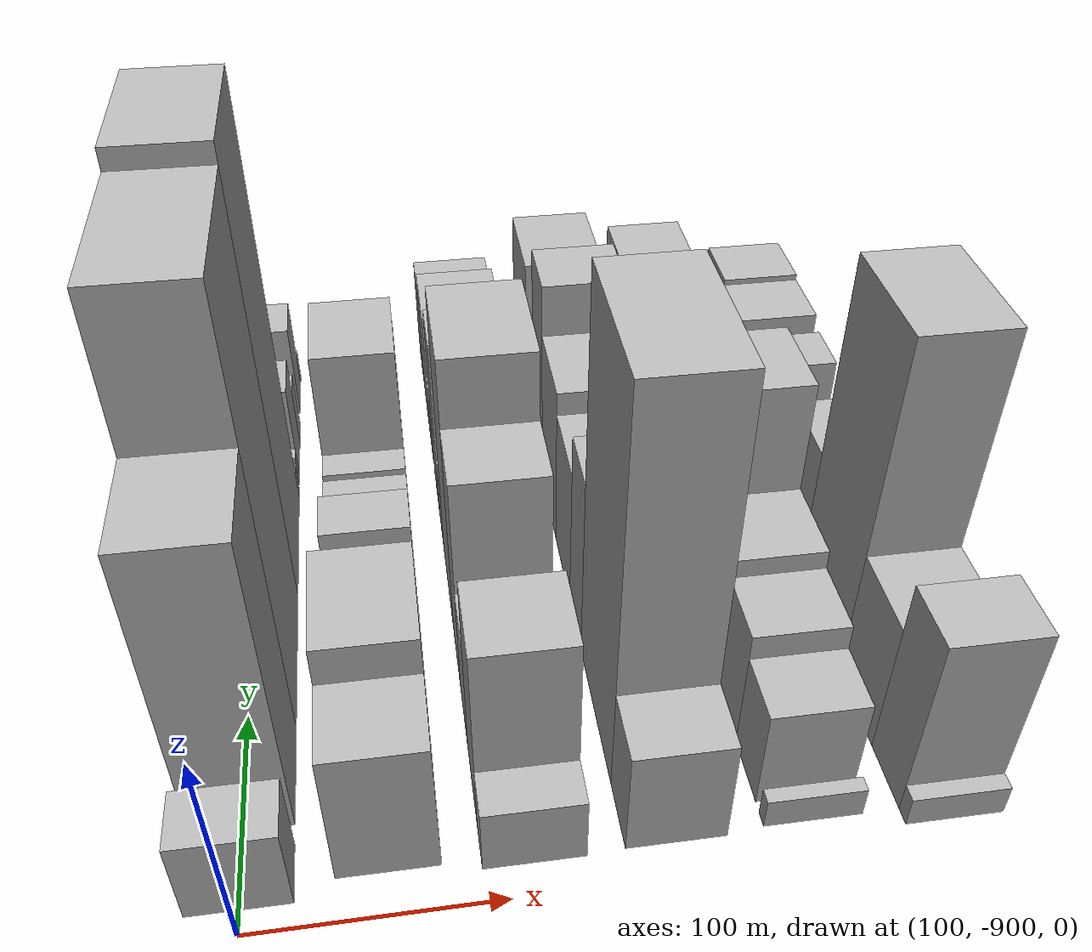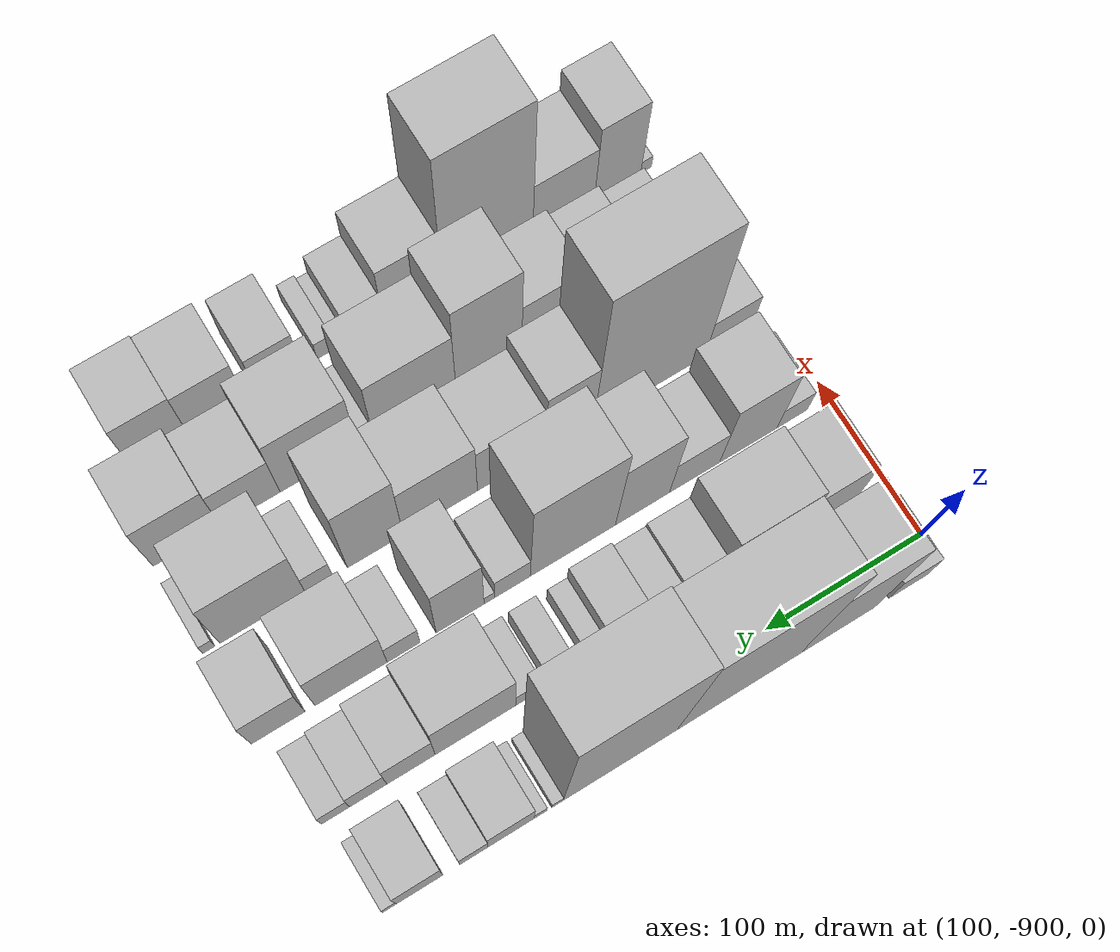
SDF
<sdf version="1.6">
 <world name="default">
  <model name="building_1">
   <static>1</static>
   <pose>100.0000 -877.6321 0 0.000000 0.000000 0.000000</pose>
   <link name="link">
    <pose>0 0 21.00 0 0 0</pose>
    <collision name="collision"><geometry><box><size>40.0000 24.7358 42.0000</size></box></geometry></collision>
    <visual name="visual">
     <cast_shadows>0</cast_shadows>
     <geometry><box><size>40.0000 24.7358 42.0000</size></box></geometry>
     <material>
      <script>
       <uri>model://HANNAS_wall/materials/scripts</uri>
       <uri>model://HANNAS_wall/materials/textures</uri>
       <name>vrc/HANNAS_wall</name>
      </script>
     </material>
    </visual>
   </link>
  </model>
  <model name="building_2">
   <static>1</static>
   <pose>100.0000 -832.5152 0 0.000000 0.000000 0.000000</pose>
   <link name="link">
    <pose>0 0 75.00 0 0 0</pose>
    <collision name="collision"><geometry><box><size>40.0000 47.4980 150.0000</size></box></geometry></collision>
    <visual name="visual">
     <cast_shadows>0</cast_shadows>
     <geometry><box><size>40.0000 47.4980 150.0000</size></box></geometry>
     <material>
      <script>
       <uri>model://HANNAS_wall/materials/scripts</uri>
       <uri>model://HANNAS_wall/materials/textures</uri>
       <name>vrc/HANNAS_wall</name>
      </script>
     </material>
    </visual>
   </link>
  </model>
  <model name="building_3">
   <static>1</static>
   <pose>100.0000 -769.8653 0 0.000000 0.000000 0.000000</pose>
   <link name="link">
    <pose>0 0 108.00 0 0 0</pose>
    <collision name="collision"><geometry><box><size>40.0000 77.8020 216.0000</size></box></geometry></collision>
    <visual name="visual">
     <cast_shadows>0</cast_shadows>
     <geometry><box><size>40.0000 77.8020 216.0000</size></box></geometry>
     <material>
      <script>
       <uri>model://HANNAS_wall/materials/scripts</uri>
       <uri>model://HANNAS_wall/materials/textures</uri>
       <name>vrc/HANNAS_wall</name>
      </script>
     </material>
    </visual>
   </link>
  </model>
  <model name="building_4">
   <static>1</static>
   <pose>100.0000 -695.8126 0 0.000000 0.000000 0.000000</pose>
   <link name="link">
    <pose>0 0 112.50 0 0 0</pose>
    <collision name="collision"><geometry><box><size>40.0000 70.3033 225.0000</size></box></geometry></collision>
    <visual name="visual">
     <cast_shadows>0</cast_shadows>
     <geometry><box><size>40.0000 70.3033 225.0000</size></box></geometry>
     <material>
      <script>
       <uri>model://HANNAS_wall/materials/scripts</uri>
       <uri>model://HANNAS_wall/materials/textures</uri>
       <name>vrc/HANNAS_wall</name>
      </script>
     </material>
    </visual>
   </link>
  </model>
  <model name="building_5">
   <static>1</static>
   <pose>100.0000 -657.1989 0 0.000000 0.000000 0.000000</pose>
   <link name="link">
    <pose>0 0 7.50 0 0 0</pose>
    <collision name="collision"><geometry><box><size>40.0000 6.9241 15.0000</size></box></geometry></collision>
    <visual name="visual">
     <cast_shadows>0</cast_shadows>
     <geometry><box><size>40.0000 6.9241 15.0000</size></box></geometry>
     <material>
      <script>
       <uri>model://HANNAS_wall/materials/scripts</uri>
       <uri>model://HANNAS_wall/materials/textures</uri>
       <name>vrc/HANNAS_wall</name>
      </script>
     </material>
    </visual>
   </link>
  </model>
  <model name="building_6">
   <static>1</static>
   <pose>100.0000 -646.8357 0 0.000000 0.000000 0.000000</pose>
   <link name="link">
    <pose>0 0 9.00 0 0 0</pose>
    <collision name="collision"><geometry><box><size>40.0000 7.8023 18.0000</size></box></geometry></collision>
    <visual name="visual">
     <cast_shadows>0</cast_shadows>
     <geometry><box><size>40.0000 7.8023 18.0000</size></box></geometry>
     <material>
      <script>
       <uri>model://HANNAS_wall/materials/scripts</uri>
       <uri>model://HANNAS_wall/materials/textures</uri>
       <name>vrc/HANNAS_wall</name>
      </script>
     </material>
    </visual>
   </link>
  </model>
  <model name="building_7">
   <static>1</static>
   <pose>100.0000 -628.9897 0 0.000000 0.000000 0.000000</pose>
   <link name="link">
    <pose>0 0 27.00 0 0 0</pose>
    <collision name="collision"><geometry><box><size>40.0000 27.8899 54.0000</size></box></geometry></collision>
    <visual name="visual">
     <cast_shadows>0</cast_shadows>
     <geometry><box><size>40.0000 27.8899 54.0000</size></box></geometry>
     <material>
      <script>
       <uri>model://HANNAS_wall/materials/scripts</uri>
       <uri>model://HANNAS_wall/materials/textures</uri>
       <name>vrc/HANNAS_wall</name>
      </script>
     </material>
    </visual>
   </link>
  </model>
  <model name="building_8">
   <static>1</static>
   <pose>100.0000 -606.5213 0 0.000000 0.000000 0.000000</pose>
   <link name="link">
    <pose>0 0 16.50 0 0 0</pose>
    <collision name="collision"><geometry><box><size>40.0000 17.0468 33.0000</size></box></geometry></collision>
    <visual name="visual">
     <cast_shadows>0</cast_shadows>
     <geometry><box><size>40.0000 17.0468 33.0000</size></box></geometry>
     <material>
      <script>
       <uri>model://HANNAS_wall/materials/scripts</uri>
       <uri>model://HANNAS_wall/materials/textures</uri>
       <name>vrc/HANNAS_wall</name>
      </script>
     </material>
    </visual>
   </link>
  </model>
  <model name="building_9">
   <static>1</static>
   <pose>100.0000 -574.1460 0 0.000000 0.000000 0.000000</pose>
   <link name="link">
    <pose>0 0 27.00 0 0 0</pose>
    <collision name="collision"><geometry><box><size>40.0000 27.7039 54.0000</size></box></geometry></collision>
    <visual name="visual">
     <cast_shadows>0</cast_shadows>
     <geometry><box><size>40.0000 27.7039 54.0000</size></box></geometry>
     <material>
      <script>
       <uri>model://HANNAS_wall/materials/scripts</uri>
       <uri>model://HANNAS_wall/materials/textures</uri>
       <name>vrc/HANNAS_wall</name>
      </script>
     </material>
    </visual>
   </link>
  </model>
  <model name="building_10">
   <static>1</static>
   <pose>100.0000 -556.1381 0 0.000000 0.000000 0.000000</pose>
   <link name="link">
    <pose>0 0 9.00 0 0 0</pose>
    <collision name="collision"><geometry><box><size>40.0000 8.3117 18.0000</size></box></geometry></collision>
    <visual name="visual">
     <cast_shadows>0</cast_shadows>
     <geometry><box><size>40.0000 8.3117 18.0000</size></box></geometry>
     <material>
      <script>
       <uri>model://HANNAS_wall/materials/scripts</uri>
       <uri>model://HANNAS_wall/materials/textures</uri>
       <name>vrc/HANNAS_wall</name>
      </script>
     </material>
    </visual>
   </link>
  </model>
  <model name="building_50">
   <static>1</static>
   <pose>155.0000 -864.3828 0 0.000000 0.000000 0.000000</pose>
   <link name="link">
    <pose>0 0 34.50 0 0 0</pose>
    <collision name="collision"><geometry><box><size>40.0000 35.2345 69.0000</size></box></geometry></collision>
    <visual name="visual">
     <cast_shadows>0</cast_shadows>
     <geometry><box><size>40.0000 35.2345 69.0000</size></box></geometry>
     <material>
      <script>
       <uri>model://HANNAS_wall/materials/scripts</uri>
       <uri>model://HANNAS_wall/materials/textures</uri>
       <name>vrc/HANNAS_wall</name>
      </script>
     </material>
    </visual>
   </link>
  </model>
  <model name="building_51">
   <static>1</static>
   <pose>155.0000 -821.0458 0 0.000000 0.000000 0.000000</pose>
   <link name="link">
    <pose>0 0 43.50 0 0 0</pose>
    <collision name="collision"><geometry><box><size>40.0000 51.4393 87.0000</size></box></geometry></collision>
    <visual name="visual">
     <cast_shadows>0</cast_shadows>
     <geometry><box><size>40.0000 51.4393 87.0000</size></box></geometry>
     <material>
      <script>
       <uri>model://HANNAS_wall/materials/scripts</uri>
       <uri>model://HANNAS_wall/materials/textures</uri>
       <name>vrc/HANNAS_wall</name>
      </script>
     </material>
    </visual>
   </link>
  </model>
  <model name="building_52">
   <static>1</static>
   <pose>155.0000 -782.1121 0 0.000000 0.000000 0.000000</pose>
   <link name="link">
    <pose>0 0 22.50 0 0 0</pose>
    <collision name="collision"><geometry><box><size>40.0000 26.4282 45.0000</size></box></geometry></collision>
    <visual name="visual">
     <cast_shadows>0</cast_shadows>
     <geometry><box><size>40.0000 26.4282 45.0000</size></box></geometry>
     <material>
      <script>
       <uri>model://HANNAS_wall/materials/scripts</uri>
       <uri>model://HANNAS_wall/materials/textures</uri>
       <name>vrc/HANNAS_wall</name>
      </script>
     </material>
    </visual>
   </link>
  </model>
  <model name="building_53">
   <static>1</static>
   <pose>155.0000 -758.0304 0 0.000000 0.000000 0.000000</pose>
   <link name="link">
    <pose>0 0 19.50 0 0 0</pose>
    <collision name="collision"><geometry><box><size>40.0000 21.7352 39.0000</size></box></geometry></collision>
    <visual name="visual">
     <cast_shadows>0</cast_shadows>
     <geometry><box><size>40.0000 21.7352 39.0000</size></box></geometry>
     <material>
      <script>
       <uri>model://HANNAS_wall/materials/scripts</uri>
       <uri>model://HANNAS_wall/materials/textures</uri>
       <name>vrc/HANNAS_wall</name>
      </script>
     </material>
    </visual>
   </link>
  </model>
  <model name="building_54">
   <static>1</static>
   <pose>155.0000 -734.2248 0 0.000000 0.000000 0.000000</pose>
   <link name="link">
    <pose>0 0 25.50 0 0 0</pose>
    <collision name="collision"><geometry><box><size>40.0000 25.8760 51.0000</size></box></geometry></collision>
    <visual name="visual">
     <cast_shadows>0</cast_shadows>
     <geometry><box><size>40.0000 25.8760 51.0000</size></box></geometry>
     <material>
      <script>
       <uri>model://HANNAS_wall/materials/scripts</uri>
       <uri>model://HANNAS_wall/materials/textures</uri>
       <name>vrc/HANNAS_wall</name>
      </script>
     </material>
    </visual>
   </link>
  </model>
  <model name="building_55">
   <static>1</static>
   <pose>155.0000 -715.2092 0 0.000000 0.000000 0.000000</pose>
   <link name="link">
    <pose>0 0 13.50 0 0 0</pose>
    <collision name="collision"><geometry><box><size>40.0000 12.1551 27.0000</size></box></geometry></collision>
    <visual name="visual">
     <cast_shadows>0</cast_shadows>
     <geometry><box><size>40.0000 12.1551 27.0000</size></box></geometry>
     <material>
      <script>
       <uri>model://HANNAS_wall/materials/scripts</uri>
       <uri>model://HANNAS_wall/materials/textures</uri>
       <name>vrc/HANNAS_wall</name>
      </script>
     </material>
    </visual>
   </link>
  </model>
  <model name="building_56">
   <static>1</static>
   <pose>155.0000 -693.7703 0 0.000000 0.000000 0.000000</pose>
   <link name="link">
    <pose>0 0 15.00 0 0 0</pose>
    <collision name="collision"><geometry><box><size>40.0000 16.7228 30.0000</size></box></geometry></collision>
    <visual name="visual">
     <cast_shadows>0</cast_shadows>
     <geometry><box><size>40.0000 16.7228 30.0000</size></box></geometry>
     <material>
      <script>
       <uri>model://HANNAS_wall/materials/scripts</uri>
       <uri>model://HANNAS_wall/materials/textures</uri>
       <name>vrc/HANNAS_wall</name>
      </script>
     </material>
    </visual>
   </link>
  </model>
  <model name="building_57">
   <static>1</static>
   <pose>155.0000 -673.3801 0 0.000000 0.000000 0.000000</pose>
   <link name="link">
    <pose>0 0 15.00 0 0 0</pose>
    <collision name="collision"><geometry><box><size>40.0000 16.0576 30.0000</size></box></geometry></collision>
    <visual name="visual">
     <cast_shadows>0</cast_shadows>
     <geometry><box><size>40.0000 16.0576 30.0000</size></box></geometry>
     <material>
      <script>
       <uri>model://HANNAS_wall/materials/scripts</uri>
       <uri>model://HANNAS_wall/materials/textures</uri>
       <name>vrc/HANNAS_wall</name>
      </script>
     </material>
    </visual>
   </link>
  </model>
  <model name="building_58">
   <static>1</static>
   <pose>155.0000 -640.7080 0 0.000000 0.000000 0.000000</pose>
   <link name="link">
    <pose>0 0 43.50 0 0 0</pose>
    <collision name="collision"><geometry><box><size>40.0000 49.2866 87.0000</size></box></geometry></collision>
    <visual name="visual">
     <cast_shadows>0</cast_shadows>
     <geometry><box><size>40.0000 49.2866 87.0000</size></box></geometry>
     <material>
      <script>
       <uri>model://HANNAS_wall/materials/scripts</uri>
       <uri>model://HANNAS_wall/materials/textures</uri>
       <name>vrc/HANNAS_wall</name>
      </script>
     </material>
    </visual>
   </link>
  </model>
  <model name="building_59">
   <static>1</static>
   <pose>155.0000 -601.4275 0 0.000000 0.000000 0.000000</pose>
   <link name="link">
    <pose>0 0 28.50 0 0 0</pose>
    <collision name="collision"><geometry><box><size>40.0000 29.2743 57.0000</size></box></geometry></collision>
    <visual name="visual">
     <cast_shadows>0</cast_shadows>
     <geometry><box><size>40.0000 29.2743 57.0000</size></box></geometry>
     <material>
      <script>
       <uri>model://HANNAS_wall/materials/scripts</uri>
       <uri>model://HANNAS_wall/materials/textures</uri>
       <name>vrc/HANNAS_wall</name>
      </script>
     </material>
    </visual>
   </link>
  </model>
  <model name="building_60">
   <static>1</static>
   <pose>155.0000 -575.6242 0 0.000000 0.000000 0.000000</pose>
   <link name="link">
    <pose>0 0 19.50 0 0 0</pose>
    <collision name="collision"><geometry><box><size>40.0000 22.3324 39.0000</size></box></geometry></collision>
    <visual name="visual">
     <cast_shadows>0</cast_shadows>
     <geometry><box><size>40.0000 22.3324 39.0000</size></box></geometry>
     <material>
      <script>
       <uri>model://HANNAS_wall/materials/scripts</uri>
       <uri>model://HANNAS_wall/materials/textures</uri>
       <name>vrc/HANNAS_wall</name>
      </script>
     </material>
    </visual>
   </link>
  </model>
  <model name="building_61">
   <static>1</static>
   <pose>155.0000 -556.0188 0 0.000000 0.000000 0.000000</pose>
   <link name="link">
    <pose>0 0 15.00 0 0 0</pose>
    <collision name="collision"><geometry><box><size>40.0000 16.8785 30.0000</size></box></geometry></collision>
    <visual name="visual">
     <cast_shadows>0</cast_shadows>
     <geometry><box><size>40.0000 16.8785 30.0000</size></box></geometry>
     <material>
      <script>
       <uri>model://HANNAS_wall/materials/scripts</uri>
       <uri>model://HANNAS_wall/materials/textures</uri>
       <name>vrc/HANNAS_wall</name>
      </script>
     </material>
    </visual>
   </link>
  </model>
  <model name="building_102">
   <static>1</static>
   <pose>210.0000 -876.1059 0 0.000000 0.000000 0.000000</pose>
   <link name="link">
    <pose>0 0 16.50 0 0 0</pose>
    <collision name="collision"><geometry><box><size>40.0000 19.7881 33.0000</size></box></geometry></collision>
    <visual name="visual">
     <cast_shadows>0</cast_shadows>
     <geometry><box><size>40.0000 19.7881 33.0000</size></box></geometry>
     <material>
      <script>
       <uri>model://HANNAS_wall/materials/scripts</uri>
       <uri>model://HANNAS_wall/materials/textures</uri>
       <name>vrc/HANNAS_wall</name>
      </script>
     </material>
    </visual>
   </link>
  </model>
  <model name="building_103">
   <static>1</static>
   <pose>210.0000 -847.5494 0 0.000000 0.000000 0.000000</pose>
   <link name="link">
    <pose>0 0 48.00 0 0 0</pose>
    <collision name="collision"><geometry><box><size>40.0000 37.3250 96.0000</size></box></geometry></collision>
    <visual name="visual">
     <cast_shadows>0</cast_shadows>
     <geometry><box><size>40.0000 37.3250 96.0000</size></box></geometry>
     <material>
      <script>
       <uri>model://HANNAS_wall/materials/scripts</uri>
       <uri>model://HANNAS_wall/materials/textures</uri>
       <name>vrc/HANNAS_wall</name>
      </script>
     </material>
    </visual>
   </link>
  </model>
  <model name="building_104">
   <static>1</static>
   <pose>210.0000 -812.7243 0 0.000000 0.000000 0.000000</pose>
   <link name="link">
    <pose>0 0 28.50 0 0 0</pose>
    <collision name="collision"><geometry><box><size>40.0000 32.3252 57.0000</size></box></geometry></collision>
    <visual name="visual">
     <cast_shadows>0</cast_shadows>
     <geometry><box><size>40.0000 32.3252 57.0000</size></box></geometry>
     <material>
      <script>
       <uri>model://HANNAS_wall/materials/scripts</uri>
       <uri>model://HANNAS_wall/materials/textures</uri>
       <name>vrc/HANNAS_wall</name>
      </script>
     </material>
    </visual>
   </link>
  </model>
  <model name="building_105">
   <static>1</static>
   <pose>210.0000 -779.2583 0 0.000000 0.000000 0.000000</pose>
   <link name="link">
    <pose>0 0 57.00 0 0 0</pose>
    <collision name="collision"><geometry><box><size>40.0000 34.6068 114.0000</size></box></geometry></collision>
    <visual name="visual">
     <cast_shadows>0</cast_shadows>
     <geometry><box><size>40.0000 34.6068 114.0000</size></box></geometry>
     <material>
      <script>
       <uri>model://HANNAS_wall/materials/scripts</uri>
       <uri>model://HANNAS_wall/materials/textures</uri>
       <name>vrc/HANNAS_wall</name>
      </script>
     </material>
    </visual>
   </link>
  </model>
  <model name="building_106">
   <static>1</static>
   <pose>210.0000 -735.0604 0 0.000000 0.000000 0.000000</pose>
   <link name="link">
    <pose>0 0 73.50 0 0 0</pose>
    <collision name="collision"><geometry><box><size>40.0000 53.7890 147.0000</size></box></geometry></collision>
    <visual name="visual">
     <cast_shadows>0</cast_shadows>
     <geometry><box><size>40.0000 53.7890 147.0000</size></box></geometry>
     <material>
      <script>
       <uri>model://HANNAS_wall/materials/scripts</uri>
       <uri>model://HANNAS_wall/materials/textures</uri>
       <name>vrc/HANNAS_wall</name>
      </script>
     </material>
    </visual>
   </link>
  </model>
  <model name="building_107">
   <static>1</static>
   <pose>210.0000 -697.0612 0 0.000000 0.000000 0.000000</pose>
   <link name="link">
    <pose>0 0 19.50 0 0 0</pose>
    <collision name="collision"><geometry><box><size>40.0000 22.2094 39.0000</size></box></geometry></collision>
    <visual name="visual">
     <cast_shadows>0</cast_shadows>
     <geometry><box><size>40.0000 22.2094 39.0000</size></box></geometry>
     <material>
      <script>
       <uri>model://HANNAS_wall/materials/scripts</uri>
       <uri>model://HANNAS_wall/materials/textures</uri>
       <name>vrc/HANNAS_wall</name>
      </script>
     </material>
    </visual>
   </link>
  </model>
  <model name="building_108">
   <static>1</static>
   <pose>210.0000 -682.6521 0 0.000000 0.000000 0.000000</pose>
   <link name="link">
    <pose>0 0 7.50 0 0 0</pose>
    <collision name="collision"><geometry><box><size>40.0000 6.6087 15.0000</size></box></geometry></collision>
    <visual name="visual">
     <cast_shadows>0</cast_shadows>
     <geometry><box><size>40.0000 6.6087 15.0000</size></box></geometry>
     <material>
      <script>
       <uri>model://HANNAS_wall/materials/scripts</uri>
       <uri>model://HANNAS_wall/materials/textures</uri>
       <name>vrc/HANNAS_wall</name>
      </script>
     </material>
    </visual>
   </link>
  </model>
  <model name="building_109">
   <static>1</static>
   <pose>210.0000 -664.4739 0 0.000000 0.000000 0.000000</pose>
   <link name="link">
    <pose>0 0 49.50 0 0 0</pose>
    <collision name="collision"><geometry><box><size>40.0000 29.7478 99.0000</size></box></geometry></collision>
    <visual name="visual">
     <cast_shadows>0</cast_shadows>
     <geometry><box><size>40.0000 29.7478 99.0000</size></box></geometry>
     <material>
      <script>
       <uri>model://HANNAS_wall/materials/scripts</uri>
       <uri>model://HANNAS_wall/materials/textures</uri>
       <name>vrc/HANNAS_wall</name>
      </script>
     </material>
    </visual>
   </link>
  </model>
  <model name="building_110">
   <static>1</static>
   <pose>210.0000 -629.4927 0 0.000000 0.000000 0.000000</pose>
   <link name="link">
    <pose>0 0 19.50 0 0 0</pose>
    <collision name="collision"><geometry><box><size>40.0000 20.2146 39.0000</size></box></geometry></collision>
    <visual name="visual">
     <cast_shadows>0</cast_shadows>
     <geometry><box><size>40.0000 20.2146 39.0000</size></box></geometry>
     <material>
      <script>
       <uri>model://HANNAS_wall/materials/scripts</uri>
       <uri>model://HANNAS_wall/materials/textures</uri>
       <name>vrc/HANNAS_wall</name>
      </script>
     </material>
    </visual>
   </link>
  </model>
  <model name="building_111">
   <static>1</static>
   <pose>210.0000 -597.3455 0 0.000000 0.000000 0.000000</pose>
   <link name="link">
    <pose>0 0 37.50 0 0 0</pose>
    <collision name="collision"><geometry><box><size>40.0000 44.0797 75.0000</size></box></geometry></collision>
    <visual name="visual">
     <cast_shadows>0</cast_shadows>
     <geometry><box><size>40.0000 44.0797 75.0000</size></box></geometry>
     <material>
      <script>
       <uri>model://HANNAS_wall/materials/scripts</uri>
       <uri>model://HANNAS_wall/materials/textures</uri>
       <name>vrc/HANNAS_wall</name>
      </script>
     </material>
    </visual>
   </link>
  </model>
  <model name="building_112">
   <static>1</static>
   <pose>210.0000 -553.0982 0 0.000000 0.000000 0.000000</pose>
   <link name="link">
    <pose>0 0 30.00 0 0 0</pose>
    <collision name="collision"><geometry><box><size>40.0000 32.4150 60.0000</size></box></geometry></collision>
    <visual name="visual">
     <cast_shadows>0</cast_shadows>
     <geometry><box><size>40.0000 32.4150 60.0000</size></box></geometry>
     <material>
      <script>
       <uri>model://HANNAS_wall/materials/scripts</uri>
       <uri>model://HANNAS_wall/materials/textures</uri>
       <name>vrc/HANNAS_wall</name>
      </script>
     </material>
    </visual>
   </link>
  </model>
  <model name="building_160">
   <static>1</static>
   <pose>265.0000 -869.9752 0 0.000000 0.000000 0.000000</pose>
   <link name="link">
    <pose>0 0 27.00 0 0 0</pose>
    <collision name="collision"><geometry><box><size>40.0000 30.0497 54.0000</size></box></geometry></collision>
    <visual name="visual">
     <cast_shadows>0</cast_shadows>
     <geometry><box><size>40.0000 30.0497 54.0000</size></box></geometry>
     <material>
      <script>
       <uri>model://HANNAS_wall/materials/scripts</uri>
       <uri>model://HANNAS_wall/materials/textures</uri>
       <name>vrc/HANNAS_wall</name>
      </script>
     </material>
    </visual>
   </link>
  </model>
  <model name="building_161">
   <static>1</static>
   <pose>265.0000 -818.8176 0 0.000000 0.000000 0.000000</pose>
   <link name="link">
    <pose>0 0 99.00 0 0 0</pose>
    <collision name="collision"><geometry><box><size>40.0000 72.2655 198.0000</size></box></geometry></collision>
    <visual name="visual">
     <cast_shadows>0</cast_shadows>
     <geometry><box><size>40.0000 72.2655 198.0000</size></box></geometry>
     <material>
      <script>
       <uri>model://HANNAS_wall/materials/scripts</uri>
       <uri>model://HANNAS_wall/materials/textures</uri>
       <name>vrc/HANNAS_wall</name>
      </script>
     </material>
    </visual>
   </link>
  </model>
  <model name="building_162">
   <static>1</static>
   <pose>265.0000 -767.0312 0 0.000000 0.000000 0.000000</pose>
   <link name="link">
    <pose>0 0 48.00 0 0 0</pose>
    <collision name="collision"><geometry><box><size>40.0000 31.3072 96.0000</size></box></geometry></collision>
    <visual name="visual">
     <cast_shadows>0</cast_shadows>
     <geometry><box><size>40.0000 31.3072 96.0000</size></box></geometry>
     <material>
      <script>
       <uri>model://HANNAS_wall/materials/scripts</uri>
       <uri>model://HANNAS_wall/materials/textures</uri>
       <name>vrc/HANNAS_wall</name>
      </script>
     </material>
    </visual>
   </link>
  </model>
  <model name="building_163">
   <static>1</static>
   <pose>265.0000 -729.9426 0 0.000000 0.000000 0.000000</pose>
   <link name="link">
    <pose>0 0 37.50 0 0 0</pose>
    <collision name="collision"><geometry><box><size>40.0000 42.8701 75.0000</size></box></geometry></collision>
    <visual name="visual">
     <cast_shadows>0</cast_shadows>
     <geometry><box><size>40.0000 42.8701 75.0000</size></box></geometry>
     <material>
      <script>
       <uri>model://HANNAS_wall/materials/scripts</uri>
       <uri>model://HANNAS_wall/materials/textures</uri>
       <name>vrc/HANNAS_wall</name>
      </script>
     </material>
    </visual>
   </link>
  </model>
  <model name="building_164">
   <static>1</static>
   <pose>265.0000 -685.1884 0 0.000000 0.000000 0.000000</pose>
   <link name="link">
    <pose>0 0 43.50 0 0 0</pose>
    <collision name="collision"><geometry><box><size>40.0000 46.6382 87.0000</size></box></geometry></collision>
    <visual name="visual">
     <cast_shadows>0</cast_shadows>
     <geometry><box><size>40.0000 46.6382 87.0000</size></box></geometry>
     <material>
      <script>
       <uri>model://HANNAS_wall/materials/scripts</uri>
       <uri>model://HANNAS_wall/materials/textures</uri>
       <name>vrc/HANNAS_wall</name>
      </script>
     </material>
    </visual>
   </link>
  </model>
  <model name="building_165">
   <static>1</static>
   <pose>265.0000 -644.4886 0 0.000000 0.000000 0.000000</pose>
   <link name="link">
    <pose>0 0 57.00 0 0 0</pose>
    <collision name="collision"><geometry><box><size>40.0000 34.7613 114.0000</size></box></geometry></collision>
    <visual name="visual">
     <cast_shadows>0</cast_shadows>
     <geometry><box><size>40.0000 34.7613 114.0000</size></box></geometry>
     <material>
      <script>
       <uri>model://HANNAS_wall/materials/scripts</uri>
       <uri>model://HANNAS_wall/materials/textures</uri>
       <name>vrc/HANNAS_wall</name>
      </script>
     </material>
    </visual>
   </link>
  </model>
  <model name="building_166">
   <static>1</static>
   <pose>265.0000 -609.6117 0 0.000000 0.000000 0.000000</pose>
   <link name="link">
    <pose>0 0 16.50 0 0 0</pose>
    <collision name="collision"><geometry><box><size>40.0000 16.9926 33.0000</size></box></geometry></collision>
    <visual name="visual">
     <cast_shadows>0</cast_shadows>
     <geometry><box><size>40.0000 16.9926 33.0000</size></box></geometry>
     <material>
      <script>
       <uri>model://HANNAS_wall/materials/scripts</uri>
       <uri>model://HANNAS_wall/materials/textures</uri>
       <name>vrc/HANNAS_wall</name>
      </script>
     </material>
    </visual>
   </link>
  </model>
  <model name="building_167">
   <static>1</static>
   <pose>265.0000 -574.9721 0 0.000000 0.000000 0.000000</pose>
   <link name="link">
    <pose>0 0 45.00 0 0 0</pose>
    <collision name="collision"><geometry><box><size>40.0000 52.2866 90.0000</size></box></geometry></collision>
    <visual name="visual">
     <cast_shadows>0</cast_shadows>
     <geometry><box><size>40.0000 52.2866 90.0000</size></box></geometry>
     <material>
      <script>
       <uri>model://HANNAS_wall/materials/scripts</uri>
       <uri>model://HANNAS_wall/materials/textures</uri>
       <name>vrc/HANNAS_wall</name>
      </script>
     </material>
    </visual>
   </link>
  </model>
  <model name="building_168">
   <static>1</static>
   <pose>265.0000 -542.1676 0 0.000000 0.000000 0.000000</pose>
   <link name="link">
    <pose>0 0 9.00 0 0 0</pose>
    <collision name="collision"><geometry><box><size>40.0000 7.3224 18.0000</size></box></geometry></collision>
    <visual name="visual">
     <cast_shadows>0</cast_shadows>
     <geometry><box><size>40.0000 7.3224 18.0000</size></box></geometry>
     <material>
      <script>
       <uri>model://HANNAS_wall/materials/scripts</uri>
       <uri>model://HANNAS_wall/materials/textures</uri>
       <name>vrc/HANNAS_wall</name>
      </script>
     </material>
    </visual>
   </link>
  </model>
  <model name="building_210">
   <static>1</static>
   <pose>320.0000 -879.8096 0 0.000000 0.000000 0.000000</pose>
   <link name="link">
    <pose>0 0 7.50 0 0 0</pose>
    <collision name="collision"><geometry><box><size>40.0000 6.3807 15.0000</size></box></geometry></collision>
    <visual name="visual">
     <cast_shadows>0</cast_shadows>
     <geometry><box><size>40.0000 6.3807 15.0000</size></box></geometry>
     <material>
      <script>
       <uri>model://HANNAS_wall/materials/scripts</uri>
       <uri>model://HANNAS_wall/materials/textures</uri>
       <name>vrc/HANNAS_wall</name>
      </script>
     </material>
    </visual>
   </link>
  </model>
  <model name="building_211">
   <static>1</static>
   <pose>320.0000 -856.8769 0 0.000000 0.000000 0.000000</pose>
   <link name="link">
    <pose>0 0 25.50 0 0 0</pose>
    <collision name="collision"><geometry><box><size>40.0000 29.4848 51.0000</size></box></geometry></collision>
    <visual name="visual">
     <cast_shadows>0</cast_shadows>
     <geometry><box><size>40.0000 29.4848 51.0000</size></box></geometry>
     <material>
      <script>
       <uri>model://HANNAS_wall/materials/scripts</uri>
       <uri>model://HANNAS_wall/materials/textures</uri>
       <name>vrc/HANNAS_wall</name>
      </script>
     </material>
    </visual>
   </link>
  </model>
  <model name="building_212">
   <static>1</static>
   <pose>320.0000 -825.7372 0 0.000000 0.000000 0.000000</pose>
   <link name="link">
    <pose>0 0 31.50 0 0 0</pose>
    <collision name="collision"><geometry><box><size>40.0000 32.7945 63.0000</size></box></geometry></collision>
    <visual name="visual">
     <cast_shadows>0</cast_shadows>
     <geometry><box><size>40.0000 32.7945 63.0000</size></box></geometry>
     <material>
      <script>
       <uri>model://HANNAS_wall/materials/scripts</uri>
       <uri>model://HANNAS_wall/materials/textures</uri>
       <name>vrc/HANNAS_wall</name>
      </script>
     </material>
    </visual>
   </link>
  </model>
  <model name="building_213">
   <static>1</static>
   <pose>320.0000 -789.8291 0 0.000000 0.000000 0.000000</pose>
   <link name="link">
    <pose>0 0 36.00 0 0 0</pose>
    <collision name="collision"><geometry><box><size>40.0000 39.0217 72.0000</size></box></geometry></collision>
    <visual name="visual">
     <cast_shadows>0</cast_shadows>
     <geometry><box><size>40.0000 39.0217 72.0000</size></box></geometry>
     <material>
      <script>
       <uri>model://HANNAS_wall/materials/scripts</uri>
       <uri>model://HANNAS_wall/materials/textures</uri>
       <name>vrc/HANNAS_wall</name>
      </script>
     </material>
    </visual>
   </link>
  </model>
  <model name="building_214">
   <static>1</static>
   <pose>320.0000 -749.2214 0 0.000000 0.000000 0.000000</pose>
   <link name="link">
    <pose>0 0 63.00 0 0 0</pose>
    <collision name="collision"><geometry><box><size>40.0000 42.1938 126.0000</size></box></geometry></collision>
    <visual name="visual">
     <cast_shadows>0</cast_shadows>
     <geometry><box><size>40.0000 42.1938 126.0000</size></box></geometry>
     <material>
      <script>
       <uri>model://HANNAS_wall/materials/scripts</uri>
       <uri>model://HANNAS_wall/materials/textures</uri>
       <name>vrc/HANNAS_wall</name>
      </script>
     </material>
    </visual>
   </link>
  </model>
  <model name="building_215">
   <static>1</static>
   <pose>320.0000 -701.8521 0 0.000000 0.000000 0.000000</pose>
   <link name="link">
    <pose>0 0 45.00 0 0 0</pose>
    <collision name="collision"><geometry><box><size>40.0000 52.5447 90.0000</size></box></geometry></collision>
    <visual name="visual">
     <cast_shadows>0</cast_shadows>
     <geometry><box><size>40.0000 52.5447 90.0000</size></box></geometry>
     <material>
      <script>
       <uri>model://HANNAS_wall/materials/scripts</uri>
       <uri>model://HANNAS_wall/materials/textures</uri>
       <name>vrc/HANNAS_wall</name>
      </script>
     </material>
    </visual>
   </link>
  </model>
  <model name="building_216">
   <static>1</static>
   <pose>320.0000 -670.6098 0 0.000000 0.000000 0.000000</pose>
   <link name="link">
    <pose>0 0 12.00 0 0 0</pose>
    <collision name="collision"><geometry><box><size>40.0000 9.9401 24.0000</size></box></geometry></collision>
    <visual name="visual">
     <cast_shadows>0</cast_shadows>
     <geometry><box><size>40.0000 9.9401 24.0000</size></box></geometry>
     <material>
      <script>
       <uri>model://HANNAS_wall/materials/scripts</uri>
       <uri>model://HANNAS_wall/materials/textures</uri>
       <name>vrc/HANNAS_wall</name>
      </script>
     </material>
    </visual>
   </link>
  </model>
  <model name="building_217">
   <static>1</static>
   <pose>320.0000 -641.3072 0 0.000000 0.000000 0.000000</pose>
   <link name="link">
    <pose>0 0 45.00 0 0 0</pose>
    <collision name="collision"><geometry><box><size>40.0000 48.6650 90.0000</size></box></geometry></collision>
    <visual name="visual">
     <cast_shadows>0</cast_shadows>
     <geometry><box><size>40.0000 48.6650 90.0000</size></box></geometry>
     <material>
      <script>
       <uri>model://HANNAS_wall/materials/scripts</uri>
       <uri>model://HANNAS_wall/materials/textures</uri>
       <name>vrc/HANNAS_wall</name>
      </script>
     </material>
    </visual>
   </link>
  </model>
  <model name="building_218">
   <static>1</static>
   <pose>320.0000 -598.6336 0 0.000000 0.000000 0.000000</pose>
   <link name="link">
    <pose>0 0 31.50 0 0 0</pose>
    <collision name="collision"><geometry><box><size>40.0000 36.6822 63.0000</size></box></geometry></collision>
    <visual name="visual">
     <cast_shadows>0</cast_shadows>
     <geometry><box><size>40.0000 36.6822 63.0000</size></box></geometry>
     <material>
      <script>
       <uri>model://HANNAS_wall/materials/scripts</uri>
       <uri>model://HANNAS_wall/materials/textures</uri>
       <name>vrc/HANNAS_wall</name>
      </script>
     </material>
    </visual>
   </link>
  </model>
  <model name="building_219">
   <static>1</static>
   <pose>320.0000 -559.5254 0 0.000000 0.000000 0.000000</pose>
   <link name="link">
    <pose>0 0 37.50 0 0 0</pose>
    <collision name="collision"><geometry><box><size>40.0000 41.5343 75.0000</size></box></geometry></collision>
    <visual name="visual">
     <cast_shadows>0</cast_shadows>
     <geometry><box><size>40.0000 41.5343 75.0000</size></box></geometry>
     <material>
      <script>
       <uri>model://HANNAS_wall/materials/scripts</uri>
       <uri>model://HANNAS_wall/materials/textures</uri>
       <name>vrc/HANNAS_wall</name>
      </script>
     </material>
    </visual>
   </link>
  </model>
  <model name="building_263">
   <static>1</static>
   <pose>375.0000 -886.4107 0 0.000000 0.000000 0.000000</pose>
   <link name="link">
    <pose>0 0 7.50 0 0 0</pose>
    <collision name="collision"><geometry><box><size>40.0000 7.1787 15.0000</size></box></geometry></collision>
    <visual name="visual">
     <cast_shadows>0</cast_shadows>
     <geometry><box><size>40.0000 7.1787 15.0000</size></box></geometry>
     <material>
      <script>
       <uri>model://HANNAS_wall/materials/scripts</uri>
       <uri>model://HANNAS_wall/materials/textures</uri>
       <name>vrc/HANNAS_wall</name>
      </script>
     </material>
    </visual>
   </link>
  </model>
  <model name="building_264">
   <static>1</static>
   <pose>375.0000 -867.3969 0 0.000000 0.000000 0.000000</pose>
   <link name="link">
    <pose>0 0 46.50 0 0 0</pose>
    <collision name="collision"><geometry><box><size>40.0000 30.8488 93.0000</size></box></geometry></collision>
    <visual name="visual">
     <cast_shadows>0</cast_shadows>
     <geometry><box><size>40.0000 30.8488 93.0000</size></box></geometry>
     <material>
      <script>
       <uri>model://HANNAS_wall/materials/scripts</uri>
       <uri>model://HANNAS_wall/materials/textures</uri>
       <name>vrc/HANNAS_wall</name>
      </script>
     </material>
    </visual>
   </link>
  </model>
  <model name="building_265">
   <static>1</static>
   <pose>375.0000 -831.6348 0 0.000000 0.000000 0.000000</pose>
   <link name="link">
    <pose>0 0 34.50 0 0 0</pose>
    <collision name="collision"><geometry><box><size>40.0000 40.6755 69.0000</size></box></geometry></collision>
    <visual name="visual">
     <cast_shadows>0</cast_shadows>
     <geometry><box><size>40.0000 40.6755 69.0000</size></box></geometry>
     <material>
      <script>
       <uri>model://HANNAS_wall/materials/scripts</uri>
       <uri>model://HANNAS_wall/materials/textures</uri>
       <name>vrc/HANNAS_wall</name>
      </script>
     </material>
    </visual>
   </link>
  </model>
  <model name="building_266">
   <static>1</static>
   <pose>375.0000 -781.8211 0 0.000000 0.000000 0.000000</pose>
   <link name="link">
    <pose>0 0 87.00 0 0 0</pose>
    <collision name="collision"><geometry><box><size>40.0000 58.9519 174.0000</size></box></geometry></collision>
    <visual name="visual">
     <cast_shadows>0</cast_shadows>
     <geometry><box><size>40.0000 58.9519 174.0000</size></box></geometry>
     <material>
      <script>
       <uri>model://HANNAS_wall/materials/scripts</uri>
       <uri>model://HANNAS_wall/materials/textures</uri>
       <name>vrc/HANNAS_wall</name>
      </script>
     </material>
    </visual>
   </link>
  </model>
  <model name="building_267">
   <static>1</static>
   <pose>375.0000 -733.1984 0 0.000000 0.000000 0.000000</pose>
   <link name="link">
    <pose>0 0 37.50 0 0 0</pose>
    <collision name="collision"><geometry><box><size>40.0000 38.2934 75.0000</size></box></geometry></collision>
    <visual name="visual">
     <cast_shadows>0</cast_shadows>
     <geometry><box><size>40.0000 38.2934 75.0000</size></box></geometry>
     <material>
      <script>
       <uri>model://HANNAS_wall/materials/scripts</uri>
       <uri>model://HANNAS_wall/materials/textures</uri>
       <name>vrc/HANNAS_wall</name>
      </script>
     </material>
    </visual>
   </link>
  </model>
  <model name="building_268">
   <static>1</static>
   <pose>375.0000 -702.3805 0 0.000000 0.000000 0.000000</pose>
   <link name="link">
    <pose>0 0 21.00 0 0 0</pose>
    <collision name="collision"><geometry><box><size>40.0000 23.3426 42.0000</size></box></geometry></collision>
    <visual name="visual">
     <cast_shadows>0</cast_shadows>
     <geometry><box><size>40.0000 23.3426 42.0000</size></box></geometry>
     <material>
      <script>
       <uri>model://HANNAS_wall/materials/scripts</uri>
       <uri>model://HANNAS_wall/materials/textures</uri>
       <name>vrc/HANNAS_wall</name>
      </script>
     </material>
    </visual>
   </link>
  </model>
  <model name="building_269">
   <static>1</static>
   <pose>375.0000 -686.8455 0 0.000000 0.000000 0.000000</pose>
   <link name="link">
    <pose>0 0 9.00 0 0 0</pose>
    <collision name="collision"><geometry><box><size>40.0000 7.7274 18.0000</size></box></geometry></collision>
    <visual name="visual">
     <cast_shadows>0</cast_shadows>
     <geometry><box><size>40.0000 7.7274 18.0000</size></box></geometry>
     <material>
      <script>
       <uri>model://HANNAS_wall/materials/scripts</uri>
       <uri>model://HANNAS_wall/materials/textures</uri>
       <name>vrc/HANNAS_wall</name>
      </script>
     </material>
    </visual>
   </link>
  </model>
  <model name="building_270">
   <static>1</static>
   <pose>375.0000 -677.4353 0 0.000000 0.000000 0.000000</pose>
   <link name="link">
    <pose>0 0 12.00 0 0 0</pose>
    <collision name="collision"><geometry><box><size>40.0000 11.0929 24.0000</size></box></geometry></collision>
    <visual name="visual">
     <cast_shadows>0</cast_shadows>
     <geometry><box><size>40.0000 11.0929 24.0000</size></box></geometry>
     <material>
      <script>
       <uri>model://HANNAS_wall/materials/scripts</uri>
       <uri>model://HANNAS_wall/materials/textures</uri>
       <name>vrc/HANNAS_wall</name>
      </script>
     </material>
    </visual>
   </link>
  </model>
  <model name="building_271">
   <static>1</static>
   <pose>375.0000 -647.6365 0 0.000000 0.000000 0.000000</pose>
   <link name="link">
    <pose>0 0 28.50 0 0 0</pose>
    <collision name="collision"><geometry><box><size>40.0000 28.5048 57.0000</size></box></geometry></collision>
    <visual name="visual">
     <cast_shadows>0</cast_shadows>
     <geometry><box><size>40.0000 28.5048 57.0000</size></box></geometry>
     <material>
      <script>
       <uri>model://HANNAS_wall/materials/scripts</uri>
       <uri>model://HANNAS_wall/materials/textures</uri>
       <name>vrc/HANNAS_wall</name>
      </script>
     </material>
    </visual>
   </link>
  </model>
  <model name="building_272">
   <static>1</static>
   <pose>375.0000 -608.3784 0 0.000000 0.000000 0.000000</pose>
   <link name="link">
    <pose>0 0 31.50 0 0 0</pose>
    <collision name="collision"><geometry><box><size>40.0000 36.0112 63.0000</size></box></geometry></collision>
    <visual name="visual">
     <cast_shadows>0</cast_shadows>
     <geometry><box><size>40.0000 36.0112 63.0000</size></box></geometry>
     <material>
      <script>
       <uri>model://HANNAS_wall/materials/scripts</uri>
       <uri>model://HANNAS_wall/materials/textures</uri>
       <name>vrc/HANNAS_wall</name>
      </script>
     </material>
    </visual>
   </link>
  </model>
  <model name="building_273">
   <static>1</static>
   <pose>375.0000 -572.7234 0 0.000000 0.000000 0.000000</pose>
   <link name="link">
    <pose>0 0 33.00 0 0 0</pose>
    <collision name="collision"><geometry><box><size>40.0000 35.2989 66.0000</size></box></geometry></collision>
    <visual name="visual">
     <cast_shadows>0</cast_shadows>
     <geometry><box><size>40.0000 35.2989 66.0000</size></box></geometry>
     <material>
      <script>
       <uri>model://HANNAS_wall/materials/scripts</uri>
       <uri>model://HANNAS_wall/materials/textures</uri>
       <name>vrc/HANNAS_wall</name>
      </script>
     </material>
    </visual>
   </link>
  </model>
 </world>
</sdf>
